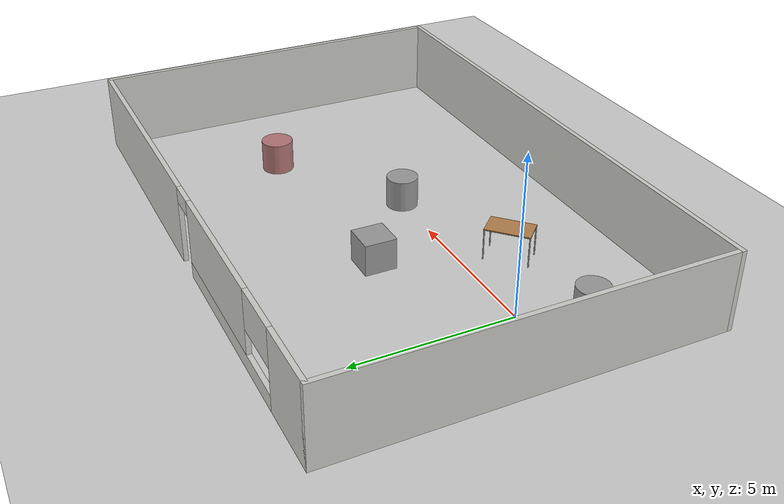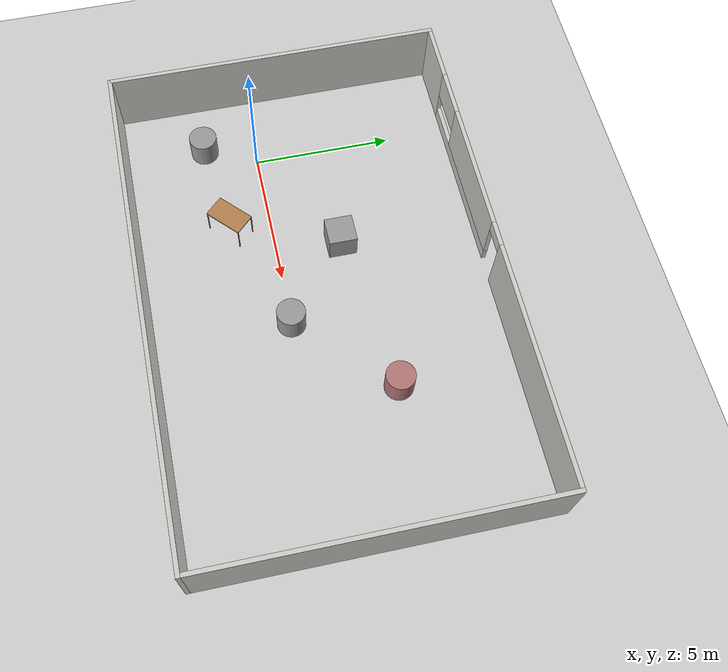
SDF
<sdf version="1.6">
 <world name="default">
  <light name="sun" type="directional">
   <pose>0 0 10 0 -0 0</pose>
   <diffuse>0.8 0.8 0.8 1</diffuse>
   <specular>0.1 0.1 0.1 1</specular>
   <attenuation>
    <range>1000</range>
    <constant>0.9</constant>
    <linear>0.01</linear>
    <quadratic>0.001</quadratic>
   </attenuation>
   <direction>-0.5 0.5 -1</direction>
  </light>
  <model name="ground_plane">
   <static>1</static>
   <link name="link">
    <collision name="collision">
     <geometry><plane><normal>0 0 1</normal><size>100 100</size></plane></geometry>
     <surface><friction><ode><mu>100</mu><mu2>50</mu2></ode></friction></surface>
    </collision>
    <visual name="visual">
     <cast_shadows>0</cast_shadows>
     <geometry><plane><normal>0 0 1</normal><size>100 100</size></plane></geometry>
     <material>
      <script><uri>file://media/materials/scripts/gazebo.material</uri><name>Gazebo/Grey</name></script>
     </material>
    </visual>
   </link>
  </model>
  <gravity>0 0 -9.8</gravity>
  <magnetic_field>6e-06 2.3e-05 -4.2e-05</magnetic_field>
  <atmosphere type="adiabatic"/>
  <physics name="default_physics" default="0" type="ode">
   <max_step_size>0.001</max_step_size>
   <real_time_factor>1</real_time_factor>
   <real_time_update_rate>1000</real_time_update_rate>
  </physics>
  <scene><ambient>0.4 0.4 0.4 1</ambient><background>0.7 0.7 0.7 1</background><shadows>1</shadows></scene>
  <spherical_coordinates>
   <surface_model>EARTH_WGS84</surface_model>
   <latitude_deg>0</latitude_deg>
   <longitude_deg>0</longitude_deg>
   <elevation>0</elevation>
   <heading_deg>0</heading_deg>
  </spherical_coordinates>
  <model name="test_room">
   <pose>6.05198 1.2083 0 0 -0 0</pose>
   <link name="Wall_10">
    <collision name="Wall_10_Collision">
     <geometry><box><size>12.15 0.15 2.5</size></box></geometry>
     <pose>0 0 1.25 0 -0 0</pose>
    </collision>
    <visual name="Wall_10_Visual">
     <pose>0 0 1.25 0 -0 0</pose>
     <geometry><box><size>12.15 0.15 2.5</size></box></geometry>
     <material>
      <script><uri>file://media/materials/scripts/gazebo.material</uri><name>Gazebo/CeilingTiled</name></script>
      <ambient>0.921569 0.807843 0.615686 1</ambient>
     </material>
    </visual>
    <pose>-8.925 0 0 0 -0 1.5708</pose>
   </link>
   <link name="Wall_7">
    <pose>0 6 0 0 -0 0</pose>
    <visual name="Wall_7_Visual_0">
     <pose>-7.8875 0 1.25 0 -0 0</pose>
     <geometry><box><size>2.225 0.15 2.5</size></box></geometry>
     <material>
      <script><uri>file://media/materials/scripts/gazebo.material</uri><name>Gazebo/CeilingTiled</name></script>
      <ambient>0.921569 0.807843 0.615686 1</ambient>
     </material>
    </visual>
    <collision name="Wall_7_Collision_0">
     <geometry><box><size>2.225 0.15 2.5</size></box></geometry>
     <pose>-7.8875 0 1.25 0 -0 0</pose>
    </collision>
    <visual name="Wall_7_Visual_1">
     <pose>4.75265 0 1.25 0 -0 0</pose>
     <geometry><box><size>8.49469 0.15 2.5</size></box></geometry>
     <material>
      <script><uri>file://media/materials/scripts/gazebo.material</uri><name>Gazebo/CeilingTiled</name></script>
      <ambient>0.921569 0.807843 0.615686 1</ambient>
     </material>
    </visual>
    <collision name="Wall_7_Collision_1">
     <geometry><box><size>8.49469 0.15 2.5</size></box></geometry>
     <pose>4.75265 0 1.25 0 -0 0</pose>
    </collision>
    <visual name="Wall_7_Visual_2">
     <pose>-3.58485 0 0.25 0 -0 0</pose>
     <geometry><box><size>6.38031 0.15 0.5</size></box></geometry>
     <material>
      <script><uri>file://media/materials/scripts/gazebo.material</uri><name>Gazebo/CeilingTiled</name></script>
      <ambient>0.921569 0.807843 0.615686 1</ambient>
     </material>
    </visual>
    <collision name="Wall_7_Collision_2">
     <geometry><box><size>6.38031 0.15 0.5</size></box></geometry>
     <pose>-3.58485 0 0.25 0 -0 0</pose>
    </collision>
    <visual name="Wall_7_Visual_3">
     <pose>-2.73485 0 1.5 0 -0 0</pose>
     <geometry><box><size>4.68031 0.15 2</size></box></geometry>
     <material>
      <script><uri>file://media/materials/scripts/gazebo.material</uri><name>Gazebo/CeilingTiled</name></script>
      <ambient>0.921569 0.807843 0.615686 1</ambient>
     </material>
    </visual>
    <collision name="Wall_7_Collision_3">
     <geometry><box><size>4.68031 0.15 2</size></box></geometry>
     <pose>-2.73485 0 1.5 0 -0 0</pose>
    </collision>
    <visual name="Wall_7_Visual_4">
     <pose>-5.925 0 1.9 0 -0 0</pose>
     <geometry><box><size>1.7 0.15 1.2</size></box></geometry>
     <material>
      <script><uri>file://media/materials/scripts/gazebo.material</uri><name>Gazebo/CeilingTiled</name></script>
      <ambient>0.921569 0.807843 0.615686 1</ambient>
     </material>
    </visual>
    <collision name="Wall_7_Collision_4">
     <geometry><box><size>1.7 0.15 1.2</size></box></geometry>
     <pose>-5.925 0 1.9 0 -0 0</pose>
    </collision>
    <visual name="Wall_7_Visual_5">
     <pose>0.055306 0 2.25 0 -0 0</pose>
     <geometry><box><size>0.9 0.15 0.5</size></box></geometry>
     <material>
      <script><uri>file://media/materials/scripts/gazebo.material</uri><name>Gazebo/CeilingTiled</name></script>
      <ambient>0.921569 0.807843 0.615686 1</ambient>
     </material>
    </visual>
    <collision name="Wall_7_Collision_5">
     <geometry><box><size>0.9 0.15 0.5</size></box></geometry>
     <pose>0.055306 0 2.25 0 -0 0</pose>
    </collision>
   </link>
   <link name="Wall_8">
    <collision name="Wall_8_Collision">
     <geometry><box><size>12.15 0.15 2.5</size></box></geometry>
     <pose>0 0 1.25 0 -0 0</pose>
    </collision>
    <visual name="Wall_8_Visual">
     <pose>0 0 1.25 0 -0 0</pose>
     <geometry><box><size>12.15 0.15 2.5</size></box></geometry>
     <material>
      <script><uri>file://media/materials/scripts/gazebo.material</uri><name>Gazebo/CeilingTiled</name></script>
      <ambient>0.921569 0.807843 0.615686 1</ambient>
     </material>
    </visual>
    <pose>8.925 0 0 0 0 -1.5708</pose>
   </link>
   <link name="Wall_9">
    <collision name="Wall_9_Collision">
     <geometry><box><size>18 0.15 2.5</size></box></geometry>
     <pose>0 0 1.25 0 -0 0</pose>
    </collision>
    <visual name="Wall_9_Visual">
     <pose>0 0 1.25 0 -0 0</pose>
     <geometry><box><size>18 0.15 2.5</size></box></geometry>
     <material>
      <script><uri>file://media/materials/scripts/gazebo.material</uri><name>Gazebo/CeilingTiled</name></script>
      <ambient>0.921569 0.807843 0.615686 1</ambient>
     </material>
    </visual>
    <pose>0 -6 0 0 -0 3.14159</pose>
   </link>
   <static>1</static>
  </model>
  <model name="table">
   <static>0</static>
   <link name="link">
    <collision name="surface">
     <pose>0 0 1 0 -0 0</pose>
     <geometry><box><size>1.5 0.8 0.03</size></box></geometry>
     <surface><friction><ode><mu>0.6</mu><mu2>0.6</mu2></ode></friction></surface>
    </collision>
    <visual name="visual1">
     <pose>0 0 1 0 -0 0</pose>
     <geometry><box><size>1.4 0.8 0.04</size></box></geometry>
     <material>
      <script><uri>file://media/materials/scripts/gazebo.material</uri><name>Gazebo/Wood</name></script>
     </material>
    </visual>
    <collision name="front_left_leg">
     <pose>0.68 0.38 0.5 0 -0 0</pose>
     <geometry><cylinder><radius>0.02</radius><length>1</length></cylinder></geometry>
    </collision>
    <visual name="front_left_leg">
     <pose>0.68 0.38 0.5 0 -0 0</pose>
     <geometry><cylinder><radius>0.02</radius><length>1</length></cylinder></geometry>
     <material>
      <script><uri>file://media/materials/scripts/gazebo.material</uri><name>Gazebo/Grey</name></script>
     </material>
    </visual>
    <collision name="front_right_leg">
     <pose>0.68 -0.38 0.5 0 -0 0</pose>
     <geometry><cylinder><radius>0.02</radius><length>1</length></cylinder></geometry>
    </collision>
    <visual name="front_right_leg">
     <pose>0.68 -0.38 0.5 0 -0 0</pose>
     <geometry><cylinder><radius>0.02</radius><length>1</length></cylinder></geometry>
     <material>
      <script><uri>file://media/materials/scripts/gazebo.material</uri><name>Gazebo/Grey</name></script>
     </material>
    </visual>
    <collision name="back_right_leg">
     <pose>-0.68 -0.38 0.5 0 -0 0</pose>
     <geometry><cylinder><radius>0.02</radius><length>1</length></cylinder></geometry>
    </collision>
    <visual name="back_right_leg">
     <pose>-0.68 -0.38 0.5 0 -0 0</pose>
     <geometry><cylinder><radius>0.02</radius><length>1</length></cylinder></geometry>
     <material>
      <script><uri>file://media/materials/scripts/gazebo.material</uri><name>Gazebo/Grey</name></script>
     </material>
    </visual>
    <collision name="back_left_leg">
     <pose>-0.68 0.38 0.5 0 -0 0</pose>
     <geometry><cylinder><radius>0.02</radius><length>1</length></cylinder></geometry>
    </collision>
    <visual name="back_left_leg">
     <pose>-0.68 0.38 0.5 0 -0 0</pose>
     <geometry><cylinder><radius>0.02</radius><length>1</length></cylinder></geometry>
     <material>
      <script><uri>file://media/materials/scripts/gazebo.material</uri><name>Gazebo/Grey</name></script>
     </material>
    </visual>
    <inertial>
     <inertia><ixx>1</ixx><ixy>0</ixy><ixz>0</ixz><iyy>1</iyy><iyz>0</iyz><izz>1</izz></inertia>
     <mass>1</mass>
    </inertial>
   </link>
   <pose>2.6808 -1.43258 0 0 -0 0.76234</pose>
  </model>
  <model name="unit_box_0">
   <pose>4.04378 2.31814 0.499995 0 1e-05 0</pose>
   <link name="link">
    <inertial>
     <mass>1</mass>
     <inertia>
      <ixx>0.166667</ixx>
      <ixy>0</ixy>
      <ixz>0</ixz>
      <iyy>0.166667</iyy>
      <iyz>0</iyz>
      <izz>0.166667</izz>
     </inertia>
    </inertial>
    <collision name="collision"><geometry><box><size>1 1 1</size></box></geometry></collision>
    <visual name="visual">
     <geometry><box><size>1 1 1</size></box></geometry>
     <material>
      <script><name>Gazebo/Grey</name><uri>file://media/materials/scripts/gazebo.material</uri></script>
     </material>
    </visual>
   </link>
  </model>
  <model name="unit_cylinder_0">
   <pose>6.83567 -0.001497 0.499993 -3e-06 -4e-06 -0</pose>
   <link name="link">
    <inertial>
     <mass>1</mass>
     <inertia><ixx>0.145833</ixx><ixy>0</ixy><ixz>0</ixz><iyy>0.145833</iyy><iyz>0</iyz><izz>0.125</izz></inertia>
    </inertial>
    <collision name="collision">
     <geometry><cylinder><radius>0.5</radius><length>1</length></cylinder></geometry>
    </collision>
    <visual name="visual">
     <geometry><cylinder><radius>0.5</radius><length>1</length></cylinder></geometry>
     <material>
      <script><name>Gazebo/Grey</name><uri>file://media/materials/scripts/gazebo.material</uri></script>
     </material>
    </visual>
   </link>
  </model>
  <model name="unit_cylinder_1">
   <pose>-0.820224 -1.85615 0.499997 3e-06 4e-06 -0</pose>
   <link name="link">
    <inertial>
     <mass>1</mass>
     <inertia><ixx>0.145833</ixx><ixy>0</ixy><ixz>0</ixz><iyy>0.145833</iyy><iyz>0</iyz><izz>0.125</izz></inertia>
    </inertial>
    <collision name="collision">
     <geometry><cylinder><radius>0.5</radius><length>1</length></cylinder></geometry>
    </collision>
    <visual name="visual">
     <geometry><cylinder><radius>0.5</radius><length>1</length></cylinder></geometry>
     <material>
      <script><name>Gazebo/Grey</name><uri>file://media/materials/scripts/gazebo.material</uri></script>
     </material>
    </visual>
   </link>
  </model>
  <model name="unit_cylinder_2">
   <pose>10 3 1 0 -0 0</pose>
   <link name="link">
    <inertial>
     <mass>1</mass>
     <inertia><ixx>0.145833</ixx><ixy>0</ixy><ixz>0</ixz><iyy>0.145833</iyy><iyz>0</iyz><izz>0.125</izz></inertia>
    </inertial>
    <collision name="collision">
     <geometry><cylinder><radius>0.499999</radius><length>1</length></cylinder></geometry>
    </collision>
    <visual name="visual">
     <geometry><cylinder><radius>0.499999</radius><length>1</length></cylinder></geometry>
     <material>
      <ambient>0.7 0.46 0.46 1.0</ambient>
      <diffuse>0.7 0.46 0.46 1.0</diffuse>
      <specular>0.7 0.46 0.46 1.0</specular>
      <emissive>0.7 0.46 0.46 1.0</emissive>
     </material>
    </visual>
   </link>
  </model>
 </world>
</sdf>
